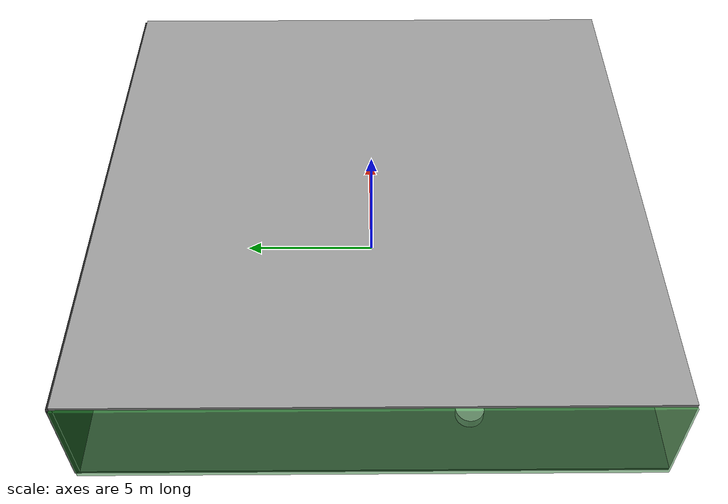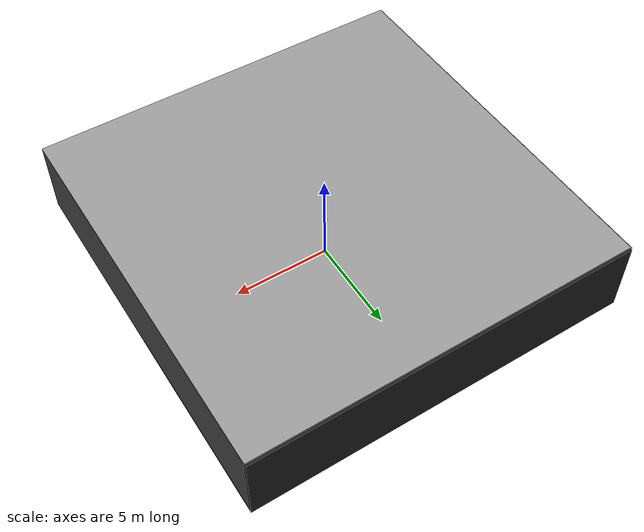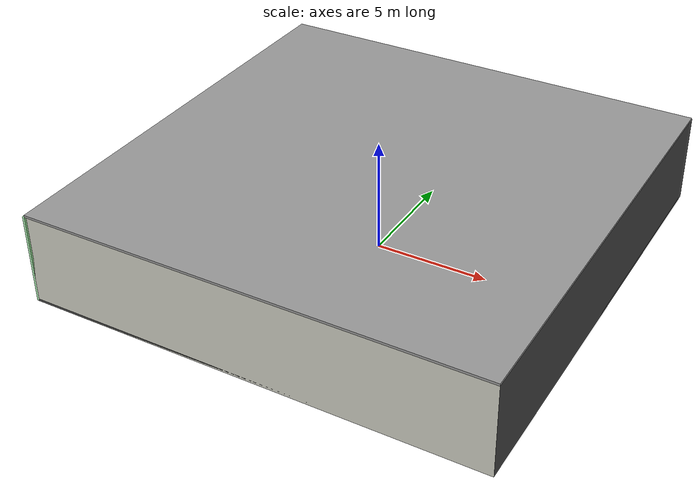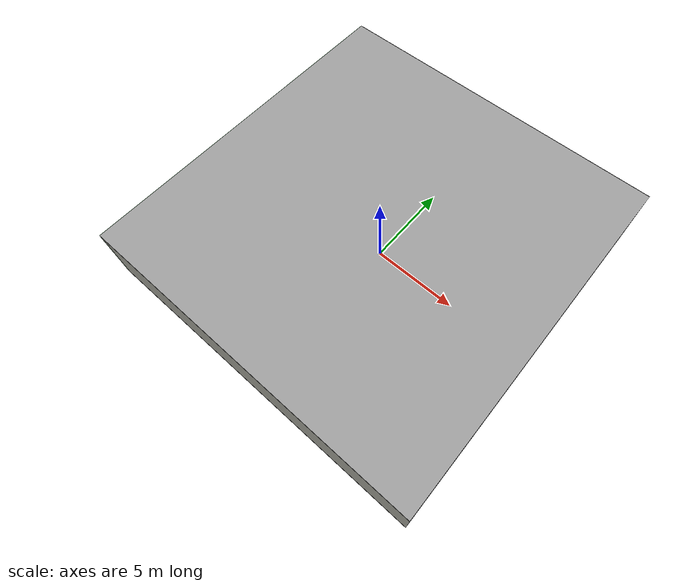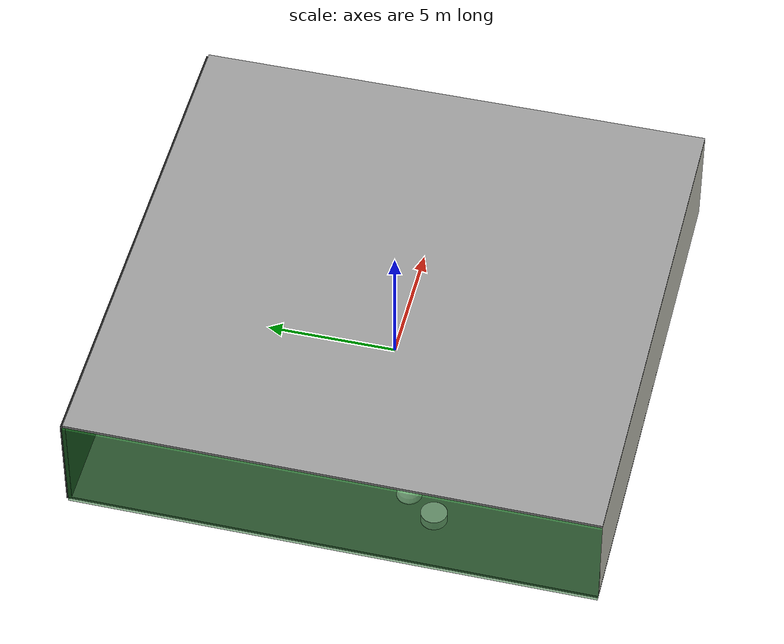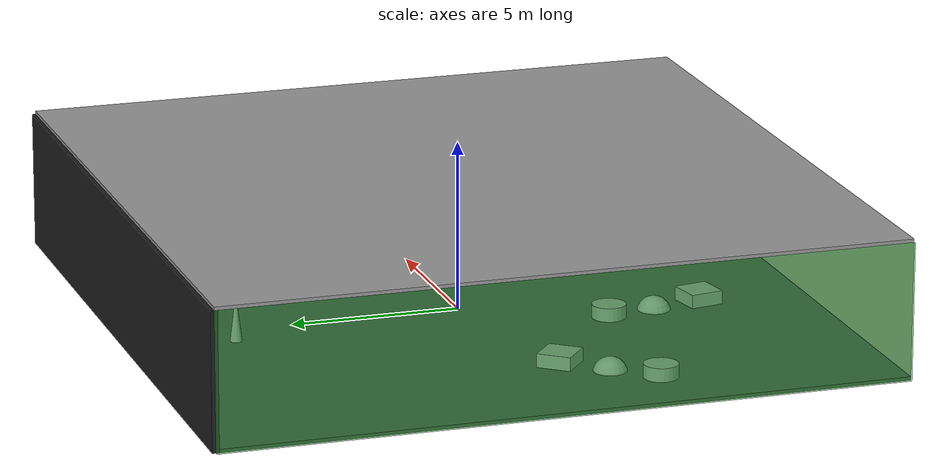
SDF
<sdf version="1.4">
 <world name="default">
  <physics type="ode">
   <max_step_size>0.001</max_step_size>
   <real_time_factor>1</real_time_factor>
   <real_time_update_rate>1000</real_time_update_rate>
   <gravity>0 0 -9.8</gravity>
  </physics>
  <scene><ambient>0.4 0.4 0.4 1</ambient><background>0.7 0.7 0.7 1</background><shadows>1</shadows></scene>
  <model name="Surrounding">
   <static>1</static>
   <link name="Ceiling">
    <collision name="Ceiling_Collision"><geometry><box><size>20 20 0.1</size></box></geometry></collision>
    <visual name="Ceiling_Visual">
     <geometry><box><size>20 20 0.1</size></box></geometry>
     <material>
      <script><uri>file://media/materials/scripts/gazebo.material</uri><name>Gazebo/GreyGradientSky</name></script>
     </material>
    </visual>
    <pose>0 0 4.05 0 0 0</pose>
   </link>
   <link name="Wall_South">
    <collision name="Wall_South_Collision">
     <geometry><box><size>20 0 4</size></box></geometry>
     <pose>0 0 2 0 -0 0</pose>
    </collision>
    <visual name="Wall_South_Visual">
     <pose>0 0 2 0 -0 0</pose>
     <geometry><box><size>20 0 4</size></box></geometry>
     <material>
      <script><uri>file://media/materials/scripts/gazebo.material</uri><name>Gazebo/PaintedWall</name></script>
     </material>
    </visual>
    <velocity_decay><linear>0</linear><angular>0</angular></velocity_decay>
    <pose>0 -10 0 0 -0 0</pose>
   </link>
   <link name="Wall_East">
    <collision name="Wall_21_Collision">
     <geometry><box><size>20 0 4</size></box></geometry>
     <pose>0 0 2 0 -0 0</pose>
    </collision>
    <visual name="Wall_21_Visual">
     <pose>0 0 2 0 -0 0</pose>
     <geometry><box><size>20 0 4</size></box></geometry>
     <material>
      <script><uri>file://media/materials/scripts/gazebo.material</uri><name>Gazebo/Road</name></script>
     </material>
    </visual>
    <velocity_decay><linear>0</linear><angular>0</angular></velocity_decay>
    <pose>10 0 0 0 -0 1.5708</pose>
   </link>
   <link name="Wall_North">
    <collision name="Wall_22_Collision">
     <geometry><box><size>20 0.2 4</size></box></geometry>
     <pose>0 0 2 0 -0 0</pose>
    </collision>
    <visual name="Wall_22_Visual">
     <pose>0 0 2 0 -0 0</pose>
     <geometry><box><size>20 0.2 4</size></box></geometry>
     <material>
      <script><uri>file://media/materials/scripts/gazebo.material</uri><name>Gazebo/FlatBlack</name></script>
     </material>
    </visual>
    <velocity_decay><linear>0</linear><angular>0</angular></velocity_decay>
    <pose>0 10 0 0 -0 0</pose>
   </link>
   <link name="Wall_West">
    <collision name="Wall_23_Collision">
     <geometry><box><size>20 0.2 4</size></box></geometry>
     <pose>0 0 2 0 -0 0</pose>
    </collision>
    <visual name="Wall_23_Visual">
     <pose>0 0 2 0 -0 0</pose>
     <geometry><box><size>20 0.2 4</size></box></geometry>
     <material>
      <script><uri>file://media/materials/scripts/gazebo.material</uri><name>Gazebo/GreenTransparent</name></script>
     </material>
    </visual>
    <velocity_decay><linear>0</linear><angular>0</angular></velocity_decay>
    <pose>-10 0 0 0 0 -1.5708</pose>
   </link>
   <link name="Ground_link">
    <collision name="collision">
     <pose>0 0 .05 0 -0 0</pose>
     <geometry><box><size>20 20 0.1</size></box></geometry>
    </collision>
    <visual name="visual">
     <pose>0 0 .05 0 -0 0</pose>
     <geometry><box><size>20 20 0.1</size></box></geometry>
     <material>
      <script><uri>file://media/materials/scripts/gazebo.material</uri><name>Gazebo/DarkGrey</name></script>
     </material>
    </visual>
   </link>
   <static>1</static>
  </model>
  <spherical_coordinates>
   <surface_model>EARTH_WGS84</surface_model>
   <latitude_deg>0</latitude_deg>
   <longitude_deg>0</longitude_deg>
   <elevation>0</elevation>
   <heading_deg>0</heading_deg>
  </spherical_coordinates>
  <light name="lightball_0" type="diffuse">
   <diffuse>0.8 0.8 0.8 1</diffuse>
   <specular>0.2 0.2 0.2 1</specular>
   <attenuation>
    <range>100</range>
    <constant>0.7</constant>
    <linear>0.01</linear>
    <quadratic>0.001</quadratic>
   </attenuation>
   <direction>-0.5 0.1 -0.9</direction>
   <pose>-4.89808550341 -9.46332173388 0.878101003121 0 0 0</pose>
  </light>
  <light name="lightball_1" type="diffuse">
   <diffuse>0.8 0.8 0.8 1</diffuse>
   <specular>0.2 0.2 0.2 1</specular>
   <attenuation>
    <range>100</range>
    <constant>0.7</constant>
    <linear>0.01</linear>
    <quadratic>0.001</quadratic>
   </attenuation>
   <direction>-0.5 0.1 -0.9</direction>
   <pose>-6.22587063187 9.74384312017 1.148410106 0 0 0</pose>
  </light>
  <light name="lightball_2" type="diffuse">
   <diffuse>0.8 0.8 0.8 1</diffuse>
   <specular>0.2 0.2 0.2 1</specular>
   <attenuation>
    <range>100</range>
    <constant>0.7</constant>
    <linear>0.01</linear>
    <quadratic>0.001</quadratic>
   </attenuation>
   <direction>-0.5 0.1 -0.9</direction>
   <pose>2.57840955445 -4.96255883151 3.18034176653 0 0 0</pose>
  </light>
  <light name="lightball_3" type="diffuse">
   <diffuse>0.8 0.8 0.8 1</diffuse>
   <specular>0.2 0.2 0.2 1</specular>
   <attenuation>
    <range>100</range>
    <constant>0.7</constant>
    <linear>0.01</linear>
    <quadratic>0.001</quadratic>
   </attenuation>
   <direction>-0.5 0.1 -0.9</direction>
   <pose>-9.68987214729 2.38921425791 1.21002613519 0 0 0</pose>
  </light>
  <light name="lightball_4" type="diffuse">
   <diffuse>0.8 0.8 0.8 1</diffuse>
   <specular>0.2 0.2 0.2 1</specular>
   <attenuation>
    <range>100</range>
    <constant>0.7</constant>
    <linear>0.01</linear>
    <quadratic>0.001</quadratic>
   </attenuation>
   <direction>-0.5 0.1 -0.9</direction>
   <pose>-3.53514310731 -5.84697951694 1.41389647801 0 0 0</pose>
  </light>
  <include>
   <uri>model://textured_shapes</uri>
   <pose>-6.93683992138 -2.23331701589 0 0 0 2.45306279149</pose>
  </include>
  <include>
   <uri>model://textured_shapes</uri>
   <pose>-2.07940193747 -5.27337297623 0 0 0 0.187283931384</pose>
  </include>
  <include>
   <uri>model://construction_cone</uri>
   <pose>-1.20675706278 6.976686331 0 0 0 0.970290125278</pose>
  </include>
  <include>
   <uri>model://robocup_3Dsim_goal</uri>
   <pose>4.29045150856 4.02757134831 0 0 0 1.36566121324</pose>
  </include>
  <include><uri>model://cabinet</uri><pose>4.17179441541 7.24272457291 0 0 0 0.746887062012</pose></include>
 </world>
</sdf>

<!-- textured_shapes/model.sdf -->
<sdf version="1.6">
  <model name="textured_shapes">
    <pose>0 0 0.5 0 0 0</pose>
    <link name="box">
      <pose>0 -1.5 0 0 0 0</pose>
      <collision name="collision">
        <geometry>
          <box>
            <size>1 1 1</size>
          </box>
        </geometry>
      </collision>
      <visual name="visual">
        <geometry>
          <box>
            <size>1 1 1</size>
          </box>
        </geometry>
        <material>
          <script>
            <uri>model://../model_source/models/textured_shapes/materials/scripts</uri>
            <uri>model://../model_source/models/textured_shapes/materials/textures</uri>
            <name>TexturedShape/Squares</name>
          </script>
        </material>
      </visual>
    </link>
    <link name="sphere">
      <collision name="collision">
        <geometry>
          <sphere>
            <radius>0.5</radius>
          </sphere>
        </geometry>
      </collision>
      <visual name="visual">
        <geometry>
          <sphere>
            <radius>0.5</radius>
          </sphere>
        </geometry>
        <material>
          <script>
            <uri>model://../model_source/models/textured_shapes/materials/scripts</uri>
            <uri>model://../model_source/models/textured_shapes/materials/textures</uri>
            <name>TexturedShape/Squares</name>
          </script>
        </material>
      </visual>
    </link>
    <link name="cylinder">
      <pose>0 1.5 0 0 0 0</pose>
      <collision name="collision">
        <geometry>
          <cylinder>
            <radius>0.5</radius>
            <length>1</length>
          </cylinder>
        </geometry>
      </collision>
      <visual name="visual">
        <geometry>
          <cylinder>
            <radius>0.5</radius>
            <length>1</length>
          </cylinder>
        </geometry>
        <material>
          <script>
            <uri>model://../model_source/models/textured_shapes/materials/scripts</uri>
            <uri>model://../model_source/models/textured_shapes/materials/textures</uri>
            <name>TexturedShape/Squares</name>
          </script>
        </material>
      </visual>
    </link>
  </model>
</sdf>

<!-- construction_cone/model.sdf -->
<sdf version="1.5">
  <model name="Construction Cone">
    <link name="link">
      <collision name="collision">
        <geometry>
          <mesh>
            <scale>10 10 10</scale>
            <uri>file://isr-testbed/construction_cone/meshes/construction_cone.dae</uri>
          </mesh>
        </geometry>
      </collision>
      <visual name="visual">
        <geometry>
          <mesh>
            <scale>10 10 10</scale>
            <uri>file://isr-testbed/construction_cone/meshes/construction_cone.dae</uri>
          </mesh>
        </geometry>
      </visual>
    </link>
  </model>
</sdf>

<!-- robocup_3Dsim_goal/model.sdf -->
<sdf version="1.5">
  <model name="robocup_3d_goal">
    <static>true</static>
    <link name="left_post">
      <pose>0 1.05 0.45 0 0 0</pose>
      <collision name="collision">
        <geometry>
          <cylinder>
            <radius>0.05</radius>
            <length>0.9</length>
          </cylinder>
        </geometry>
      </collision>
      <visual name="visual">
        <geometry>
          <cylinder>
            <radius>0.05</radius>
            <length>0.9</length>
          </cylinder>
        </geometry>
        <material>
          <script>
            <uri>file://media/materials/scripts/gazebo.material</uri>
            <name>Gazebo/ZincYellow</name>
          </script>
        </material>
      </visual>
    </link>
    <link name="left_support_horiz_lower">
      <pose>0.30 1.05 0.01 0 0 0</pose>
      <collision name="collision">
        <geometry>
          <box>
            <size>0.50 0.02 0.02</size>
          </box>
        </geometry>
      </collision>
      <visual name="visual">
        <geometry>
          <box>
            <size>0.50 0.02 0.02</size>
          </box>
        </geometry>
        <material>
          <script>
            <uri>file://media/materials/scripts/gazebo.material</uri>
            <name>Gazebo/White</name>
          </script>
        </material>
      </visual>
    </link>
    <link name="left_support_horiz_upper">
      <pose>0.30 1.05 0.79 0 0 0</pose>
      <collision name="collision">
        <geometry>
          <box>
            <size>0.50 0.02 0.02</size>
          </box>
        </geometry>
      </collision>
      <visual name="visual">
        <geometry>
          <box>
            <size>0.50 0.02 0.02</size>
          </box>
        </geometry>
        <material>
          <script>
            <uri>file://media/materials/scripts/gazebo.material</uri>
            <name>Gazebo/White</name>
          </script>
        </material>
      </visual>
    </link>
    <link name="left_support_vertical">
      <pose>0.56 1.05 0.4 0 1.5708 0</pose>
      <collision name="collision">
        <geometry>
          <box>
            <size>0.80 0.02 0.02</size>
          </box>
        </geometry>
      </collision>
      <visual name="visual">
        <geometry>
          <box>
            <size>0.80 0.02 0.02</size>
          </box>
        </geometry>
        <material>
          <script>
            <uri>file://media/materials/scripts/gazebo.material</uri>
            <name>Gazebo/White</name>
          </script>
        </material>
      </visual>
    </link>
    <link name="right_support_horiz_lower">
      <pose>0.30 -1.05 0.01 0 0 0</pose>
      <collision name="collision">
        <geometry>
          <box>
            <size>0.50 0.02 0.02</size>
          </box>
        </geometry>
      </collision>
      <visual name="visual">
        <geometry>
          <box>
            <size>0.50 0.02 0.02</size>
          </box>
        </geometry>
        <material>
          <script>
            <uri>file://media/materials/scripts/gazebo.material</uri>
            <name>Gazebo/White</name>
          </script>
        </material>
      </visual>
    </link>
    <link name="right_support_horiz_upper">
      <pose>0.30 -1.05 0.79 0 0 0</pose>
      <collision name="collision">
        <geometry>
          <box>
            <size>0.50 0.02 0.02</size>
          </box>
        </geometry>
      </collision>
      <visual name="visual">
        <geometry>
          <box>
            <size>0.50 0.02 0.02</size>
          </box>
        </geometry>
        <material>
          <script>
            <uri>file://media/materials/scripts/gazebo.material</uri>
            <name>Gazebo/White</name>
          </script>
        </material>
      </visual>
    </link>
    <link name="right_support_vertical">
      <pose>0.56 -1.05 0.4 0 1.5708 0</pose>
      <collision name="collision">
        <geometry>
          <box>
            <size>0.80 0.02 0.02</size>
          </box>
        </geometry>
      </collision>
      <visual name="visual">
        <geometry>
          <box>
            <size>0.80 0.02 0.02</size>
          </box>
        </geometry>
        <material>
          <script>
            <uri>file://media/materials/scripts/gazebo.material</uri>
            <name>Gazebo/White</name>
          </script>
        </material>
      </visual>
    </link>
    <link name="center_support_horiz_lower">
      <pose>0.56 0 0.01 0 1.5708 0</pose>
      <collision name="collision">
        <geometry>
          <box>
            <size>0.02 2.08 0.02</size>
          </box>
        </geometry>
      </collision>
      <visual name="visual">
        <geometry>
          <box>
            <size>0.02 2.08 0.02</size>
          </box>
        </geometry>
        <material>
          <script>
            <uri>file://media/materials/scripts/gazebo.material</uri>
            <name>Gazebo/White</name>
          </script>
        </material>
      </visual>
    </link>
    <link name="center_support_horiz_upper">
      <pose>0.56 0 0.79 0 1.5708 0</pose>
      <collision name="collision">
        <geometry>
          <box>
            <size>0.02 2.08 0.02</size>
          </box>
        </geometry>
      </collision>
      <visual name="visual">
        <geometry>
          <box>
            <size>0.02 2.08 0.02</size>
          </box>
        </geometry>
        <material>
          <script>
            <uri>file://media/materials/scripts/gazebo.material</uri>
            <name>Gazebo/White</name>
          </script>
        </material>
      </visual>
    </link>
    <link name="right_post">
      <pose>0 -1.05 0.45 0 0 0</pose>
      <collision name="collision">
        <geometry>
          <cylinder>
            <radius>0.05</radius>
            <length>0.9</length>
          </cylinder>
        </geometry>
      </collision>
      <visual name="visual">
        <geometry>
          <cylinder>
            <radius>0.05</radius>
            <length>0.9</length>
          </cylinder>
        </geometry>
        <material>
          <script>
            <uri>file://media/materials/scripts/gazebo.material</uri>
            <name>Gazebo/ZincYellow</name>
          </script>
        </material>
      </visual>
    </link>
    <link name="crossbar">
      <pose>0 0 0.85 1.57 1.57 0</pose>
      <collision name="collision">
        <geometry>
          <cylinder>
            <radius>0.05</radius>
            <length>2.0</length>
          </cylinder>
        </geometry>
      </collision>
      <visual name="visual">
        <geometry>
          <cylinder>
            <radius>0.05</radius>
            <length>2.0</length>
          </cylinder>
        </geometry>
        <material>
          <script>
            <uri>file://media/materials/scripts/gazebo.material</uri>
            <name>Gazebo/ZincYellow</name>
          </script>
        </material>
      </visual>
    </link>
    <link name="center_net">
      <pose>0.56 0 0.40 0 0 0</pose>
      <collision name="collision">
        <geometry>
          <box>
            <size>0.01 2.1 0.80</size>
          </box>
        </geometry>
      </collision>
      <visual name="visual">
        <geometry>
          <box>
            <size>0.01 2.1 0.80</size>
          </box>
        </geometry>
        <material>
          <script>
            <uri>model://../model_source/models/robocup09_spl_field/materials/scripts/</uri>
            <uri>model://../model_source/models/robocup09_spl_field/materials/textures/</uri>
            <name>RoboCup/Net</name>
          </script>
        </material>
      </visual>
    </link>
    <link name="left_net">
      <pose>0.30 1.05 0.40 0 0 0</pose>
      <collision name="collision">
        <geometry>
          <box>
            <size>0.50 0.01 0.76</size>
          </box>
        </geometry>
      </collision>
      <visual name="visual">
        <geometry>
          <box>
            <size>0.50 0.01 0.76</size>
          </box>
        </geometry>
        <material>
          <script>
            <uri>model://../model_source/models/robocup09_spl_field/materials/scripts/</uri>
            <uri>model://../model_source/models/robocup09_spl_field/materials/textures/</uri>
            <name>RoboCup/Net</name>
          </script>
        </material>
      </visual>
    </link>
    <link name="right_net">
      <pose>0.30 -1.05 0.40 0 0 0</pose>
      <collision name="collision">
        <geometry>
          <box>
            <size>0.50 0.01 0.76</size>
          </box>
        </geometry>
      </collision>
      <visual name="visual">
        <geometry>
          <box>
            <size>0.50 0.01 0.76</size>
          </box>
        </geometry>
        <material>
          <script>
            <uri>model://../model_source/models/robocup09_spl_field/materials/scripts/</uri>
            <uri>model://../model_source/models/robocup09_spl_field/materials/textures/</uri>
            <name>RoboCup/Net</name>
          </script>
        </material>
      </visual>
    </link>
  </model>
</sdf>

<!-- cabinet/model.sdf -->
<sdf version="1.5">
  <model name="cabinet">
    <static>true</static>
    <link name="cabinet_bottom_plate">
      <inertial>
        <pose>0 0 -1 0 0 0</pose>
        <inertia>
          <ixx>2.050000</ixx>
          <ixy>0</ixy>
          <ixz>0</ixz>
          <iyy>2.050000</iyy>
          <iyz>0</iyz>
          <izz>2.050000</izz>
        </inertia>
        <mass>25.000000</mass>
      </inertial>
      <collision name="cabinet_bottom_plate_geom">
        <pose>0 0 0.010000 0 0 0</pose>
        <geometry>
          <box>
            <size>0.450000 0.450000 0.020000</size>
          </box>
        </geometry>
      </collision>
      <visual name="cabinet_bottom_plate_geom_visual">
        <pose>0 0 0.010000 0 0 0</pose>
        <geometry>
          <box>
            <size>0.450000 0.450000 0.020000</size>
          </box>
        </geometry>
        <material>
          <script>
            <uri>model://media/materials/scripts/gazebo.material</uri>
            <name>Gazebo/Wood</name>
          </script>
        </material>
      </visual>
      <collision name="cabinet_bottom_plate_geom_cabinet_back_plate">
        <pose>0.235000 0 0.510000 0 0 0</pose>
        <geometry>
          <box>
            <size>0.020000 0.450000 1.020000</size>
          </box>
        </geometry>
      </collision>
      <visual name="cabinet_bottom_plate_geom_cabinet_back_plate_visual">
        <pose>0.235000 0 0.510000 0 0 0</pose>
        <geometry>
          <box>
            <size>0.020000 0.450000 1.020000</size>
          </box>
        </geometry>
        <material>
          <script>
            <uri>model://media/materials/scripts/gazebo.material</uri>
            <name>Gazebo/Wood</name>
          </script>
        </material>
      </visual>
      <collision name="cabinet_bottom_plate_geom_cabinet_left_plate">
        <pose>0 0.235000 0.510000 0 0 0</pose>
        <geometry>
          <box>
            <size>0.450000 0.020000 1.020000</size>
          </box>
        </geometry>
      </collision>
      <visual name="cabinet_bottom_plate_geom_cabinet_left_plate_visual">
        <pose>0 0.235000 0.510000 0 0 0</pose>
        <geometry>
          <box>
            <size>0.450000 0.020000 1.020000</size>
          </box>
        </geometry>
        <material>
          <script>
            <uri>model://media/materials/scripts/gazebo.material</uri>
            <name>Gazebo/Wood</name>
          </script>
        </material>
      </visual>
      <collision name="cabinet_bottom_plate_geom_cabinet_middle_plate">
        <pose>0 0 0.510000 0 0 0</pose>
        <geometry>
          <box>
            <size>0.450000 0.450000 0.020000</size>
          </box>
        </geometry>
      </collision>
      <visual name="cabinet_bottom_plate_geom_cabinet_middle_plate_visual">
        <pose>0 0 0.510000 0 0 0</pose>
        <geometry>
          <box>
            <size>0.450000 0.450000 0.020000</size>
          </box>
        </geometry>
        <material>
          <script>
            <uri>model://media/materials/scripts/gazebo.material</uri>
            <name>Gazebo/Wood</name>
          </script>
        </material>
      </visual>
      <collision name="cabinet_bottom_plate_geom_cabinet_right_plate">
        <pose>0 -0.235000 0.510000 0 0 0</pose>
        <geometry>
          <box>
            <size>0.450000 0.020000 1.020000</size>
          </box>
        </geometry>
      </collision>
      <visual name="cabinet_bottom_plate_geom_cabinet_right_plate_visual">
        <pose>0 -0.235000 0.510000 0 0 0</pose>
        <geometry>
          <box>
            <size>0.450000 0.020000 1.020000</size>
          </box>
        </geometry>
        <material>
          <script>
            <uri>model://media/materials/scripts/gazebo.material</uri>
            <name>Gazebo/Wood</name>
          </script>
        </material>
      </visual>
      <collision name="cabinet_bottom_plate_geom_cabinet_top_plate">
        <pose>0 0 1.010000 0 0 0</pose>
        <geometry>
          <box>
            <size>0.450000 0.450000 0.020000</size>
          </box>
        </geometry>
      </collision>
      <visual name="cabinet_bottom_plate_geom_cabinet_top_plate_visual">
        <pose>0 0 1.010000 0 0 0</pose>
        <geometry>
          <box>
            <size>0.450000 0.450000 0.020000</size>
          </box>
        </geometry>
        <material>
          <script>
            <uri>model://media/materials/scripts/gazebo.material</uri>
            <name>Gazebo/Wood</name>
          </script>
        </material>
      </visual>
    </link>
  </model>
</sdf>
